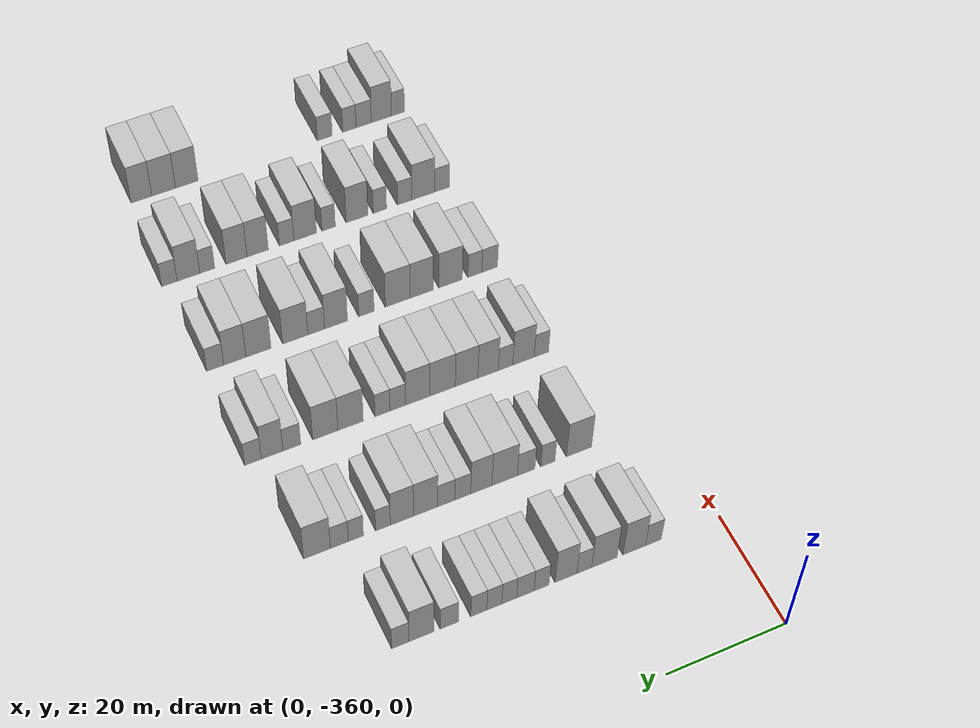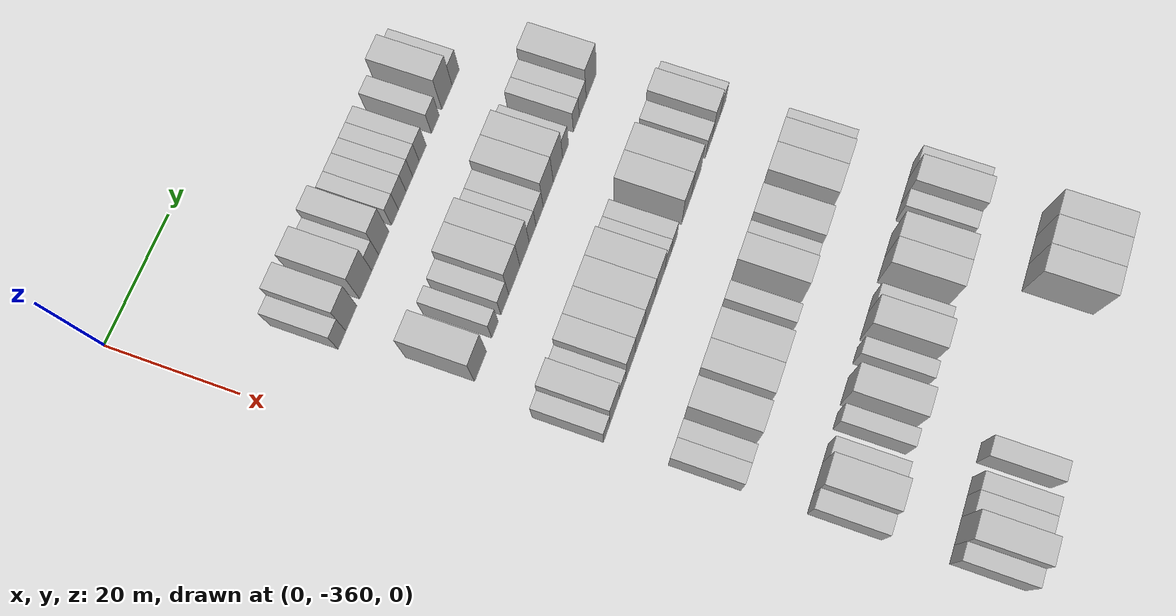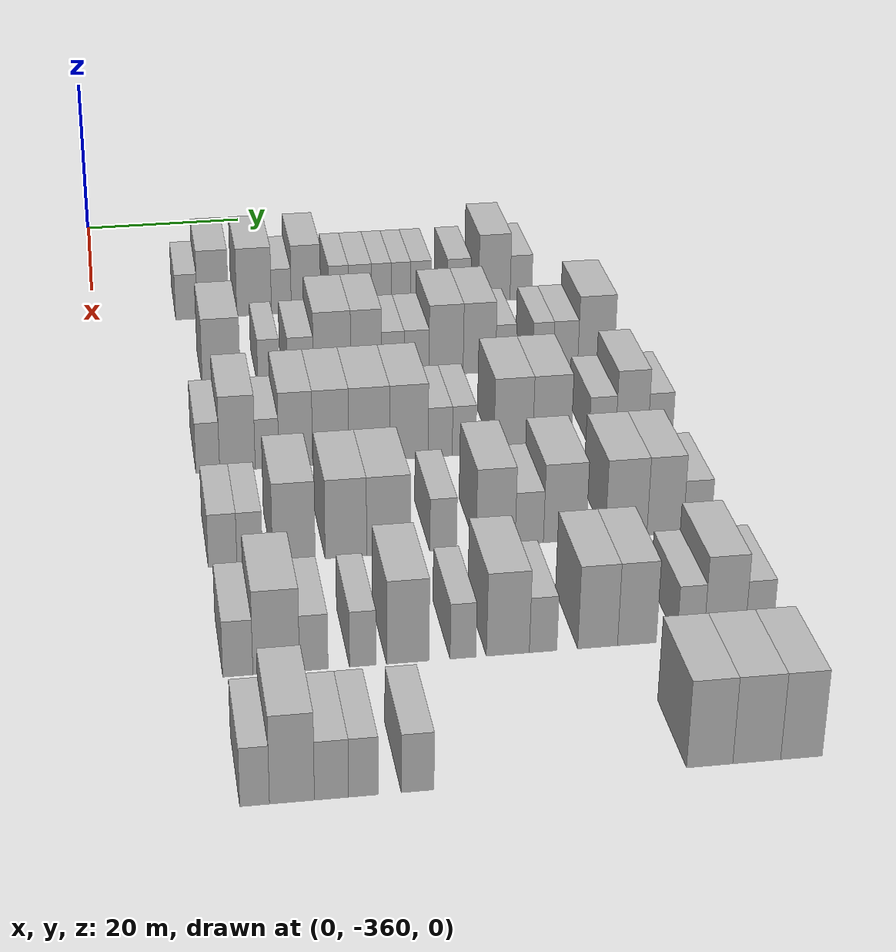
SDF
<sdf version="1.6">
 <world name="default">
  <model name="building_1">
   <static>1</static>
   <pose>25.0000 -348.6639 0 0.000000 0.000000 0.000000</pose>
   <link name="link">
    <pose>0 0 3.00 0 0 0</pose>
    <collision name="collision"><geometry><box><size>10.0000 2.6721 6.0000</size></box></geometry></collision>
    <visual name="visual">
     <cast_shadows>0</cast_shadows>
     <geometry><box><size>10.0000 2.6721 6.0000</size></box></geometry>
     <material>
      <script>
       <uri>model://HANNAS_wall/materials/scripts</uri>
       <uri>model://HANNAS_wall/materials/textures</uri>
       <name>vrc/HANNAS_wall</name>
      </script>
     </material>
    </visual>
   </link>
  </model>
  <model name="building_2">
   <static>1</static>
   <pose>25.0000 -345.4278 0 0.000000 0.000000 0.000000</pose>
   <link name="link">
    <pose>0 0 4.50 0 0 0</pose>
    <collision name="collision"><geometry><box><size>10.0000 3.8002 9.0000</size></box></geometry></collision>
    <visual name="visual">
     <cast_shadows>0</cast_shadows>
     <geometry><box><size>10.0000 3.8002 9.0000</size></box></geometry>
     <material>
      <script>
       <uri>model://HANNAS_wall/materials/scripts</uri>
       <uri>model://HANNAS_wall/materials/textures</uri>
       <name>vrc/HANNAS_wall</name>
      </script>
     </material>
    </visual>
   </link>
  </model>
  <model name="building_3">
   <static>1</static>
   <pose>25.0000 -340.3919 0 0.000000 0.000000 0.000000</pose>
   <link name="link">
    <pose>0 0 4.50 0 0 0</pose>
    <collision name="collision"><geometry><box><size>10.0000 4.2715 9.0000</size></box></geometry></collision>
    <visual name="visual">
     <cast_shadows>0</cast_shadows>
     <geometry><box><size>10.0000 4.2715 9.0000</size></box></geometry>
     <material>
      <script>
       <uri>model://HANNAS_wall/materials/scripts</uri>
       <uri>model://HANNAS_wall/materials/textures</uri>
       <name>vrc/HANNAS_wall</name>
      </script>
     </material>
    </visual>
   </link>
  </model>
  <model name="building_4">
   <static>1</static>
   <pose>25.0000 -337.0334 0 0.000000 0.000000 0.000000</pose>
   <link name="link">
    <pose>0 0 3.00 0 0 0</pose>
    <collision name="collision"><geometry><box><size>10.0000 2.4455 6.0000</size></box></geometry></collision>
    <visual name="visual">
     <cast_shadows>0</cast_shadows>
     <geometry><box><size>10.0000 2.4455 6.0000</size></box></geometry>
     <material>
      <script>
       <uri>model://HANNAS_wall/materials/scripts</uri>
       <uri>model://HANNAS_wall/materials/textures</uri>
       <name>vrc/HANNAS_wall</name>
      </script>
     </material>
    </visual>
   </link>
  </model>
  <model name="building_5">
   <static>1</static>
   <pose>25.0000 -333.9931 0 0.000000 0.000000 0.000000</pose>
   <link name="link">
    <pose>0 0 4.50 0 0 0</pose>
    <collision name="collision"><geometry><box><size>10.0000 3.6352 9.0000</size></box></geometry></collision>
    <visual name="visual">
     <cast_shadows>0</cast_shadows>
     <geometry><box><size>10.0000 3.6352 9.0000</size></box></geometry>
     <material>
      <script>
       <uri>model://HANNAS_wall/materials/scripts</uri>
       <uri>model://HANNAS_wall/materials/textures</uri>
       <name>vrc/HANNAS_wall</name>
      </script>
     </material>
    </visual>
   </link>
  </model>
  <model name="building_6">
   <static>1</static>
   <pose>25.0000 -329.9448 0 0.000000 0.000000 0.000000</pose>
   <link name="link">
    <pose>0 0 3.00 0 0 0</pose>
    <collision name="collision"><geometry><box><size>10.0000 2.4614 6.0000</size></box></geometry></collision>
    <visual name="visual">
     <cast_shadows>0</cast_shadows>
     <geometry><box><size>10.0000 2.4614 6.0000</size></box></geometry>
     <material>
      <script>
       <uri>model://HANNAS_wall/materials/scripts</uri>
       <uri>model://HANNAS_wall/materials/textures</uri>
       <name>vrc/HANNAS_wall</name>
      </script>
     </material>
    </visual>
   </link>
  </model>
  <model name="building_7">
   <static>1</static>
   <pose>25.0000 -327.2852 0 0.000000 0.000000 0.000000</pose>
   <link name="link">
    <pose>0 0 3.00 0 0 0</pose>
    <collision name="collision"><geometry><box><size>10.0000 2.8578 6.0000</size></box></geometry></collision>
    <visual name="visual">
     <cast_shadows>0</cast_shadows>
     <geometry><box><size>10.0000 2.8578 6.0000</size></box></geometry>
     <material>
      <script>
       <uri>model://HANNAS_wall/materials/scripts</uri>
       <uri>model://HANNAS_wall/materials/textures</uri>
       <name>vrc/HANNAS_wall</name>
      </script>
     </material>
    </visual>
   </link>
  </model>
  <model name="building_8">
   <static>1</static>
   <pose>25.0000 -324.6394 0 0.000000 0.000000 0.000000</pose>
   <link name="link">
    <pose>0 0 3.00 0 0 0</pose>
    <collision name="collision"><geometry><box><size>10.0000 2.4337 6.0000</size></box></geometry></collision>
    <visual name="visual">
     <cast_shadows>0</cast_shadows>
     <geometry><box><size>10.0000 2.4337 6.0000</size></box></geometry>
     <material>
      <script>
       <uri>model://HANNAS_wall/materials/scripts</uri>
       <uri>model://HANNAS_wall/materials/textures</uri>
       <name>vrc/HANNAS_wall</name>
      </script>
     </material>
    </visual>
   </link>
  </model>
  <model name="building_9">
   <static>1</static>
   <pose>25.0000 -322.2049 0 0.000000 0.000000 0.000000</pose>
   <link name="link">
    <pose>0 0 3.00 0 0 0</pose>
    <collision name="collision"><geometry><box><size>10.0000 2.4353 6.0000</size></box></geometry></collision>
    <visual name="visual">
     <cast_shadows>0</cast_shadows>
     <geometry><box><size>10.0000 2.4353 6.0000</size></box></geometry>
     <material>
      <script>
       <uri>model://HANNAS_wall/materials/scripts</uri>
       <uri>model://HANNAS_wall/materials/textures</uri>
       <name>vrc/HANNAS_wall</name>
      </script>
     </material>
    </visual>
   </link>
  </model>
  <model name="building_10">
   <static>1</static>
   <pose>25.0000 -319.6846 0 0.000000 0.000000 0.000000</pose>
   <link name="link">
    <pose>0 0 3.00 0 0 0</pose>
    <collision name="collision"><geometry><box><size>10.0000 2.6054 6.0000</size></box></geometry></collision>
    <visual name="visual">
     <cast_shadows>0</cast_shadows>
     <geometry><box><size>10.0000 2.6054 6.0000</size></box></geometry>
     <material>
      <script>
       <uri>model://HANNAS_wall/materials/scripts</uri>
       <uri>model://HANNAS_wall/materials/textures</uri>
       <name>vrc/HANNAS_wall</name>
      </script>
     </material>
    </visual>
   </link>
  </model>
  <model name="building_11">
   <static>1</static>
   <pose>25.0000 -314.9156 0 0.000000 0.000000 0.000000</pose>
   <link name="link">
    <pose>0 0 3.00 0 0 0</pose>
    <collision name="collision"><geometry><box><size>10.0000 2.9324 6.0000</size></box></geometry></collision>
    <visual name="visual">
     <cast_shadows>0</cast_shadows>
     <geometry><box><size>10.0000 2.9324 6.0000</size></box></geometry>
     <material>
      <script>
       <uri>model://HANNAS_wall/materials/scripts</uri>
       <uri>model://HANNAS_wall/materials/textures</uri>
       <name>vrc/HANNAS_wall</name>
      </script>
     </material>
    </visual>
   </link>
  </model>
  <model name="building_12">
   <static>1</static>
   <pose>25.0000 -310.4565 0 0.000000 0.000000 0.000000</pose>
   <link name="link">
    <pose>0 0 4.50 0 0 0</pose>
    <collision name="collision"><geometry><box><size>10.0000 3.9858 9.0000</size></box></geometry></collision>
    <visual name="visual">
     <cast_shadows>0</cast_shadows>
     <geometry><box><size>10.0000 3.9858 9.0000</size></box></geometry>
     <material>
      <script>
       <uri>model://HANNAS_wall/materials/scripts</uri>
       <uri>model://HANNAS_wall/materials/textures</uri>
       <name>vrc/HANNAS_wall</name>
      </script>
     </material>
    </visual>
   </link>
  </model>
  <model name="building_13">
   <static>1</static>
   <pose>25.0000 -307.0967 0 0.000000 0.000000 0.000000</pose>
   <link name="link">
    <pose>0 0 3.00 0 0 0</pose>
    <collision name="collision"><geometry><box><size>10.0000 2.7338 6.0000</size></box></geometry></collision>
    <visual name="visual">
     <cast_shadows>0</cast_shadows>
     <geometry><box><size>10.0000 2.7338 6.0000</size></box></geometry>
     <material>
      <script>
       <uri>model://HANNAS_wall/materials/scripts</uri>
       <uri>model://HANNAS_wall/materials/textures</uri>
       <name>vrc/HANNAS_wall</name>
      </script>
     </material>
    </visual>
   </link>
  </model>
  <model name="building_158">
   <static>1</static>
   <pose>44.0000 -345.8240 0 0.000000 0.000000 0.000000</pose>
   <link name="link">
    <pose>0 0 4.50 0 0 0</pose>
    <collision name="collision"><geometry><box><size>10.0000 4.3519 9.0000</size></box></geometry></collision>
    <visual name="visual">
     <cast_shadows>0</cast_shadows>
     <geometry><box><size>10.0000 4.3519 9.0000</size></box></geometry>
     <material>
      <script>
       <uri>model://HANNAS_wall/materials/scripts</uri>
       <uri>model://HANNAS_wall/materials/textures</uri>
       <name>vrc/HANNAS_wall</name>
      </script>
     </material>
    </visual>
   </link>
  </model>
  <model name="building_159">
   <static>1</static>
   <pose>44.0000 -340.4267 0 0.000000 0.000000 0.000000</pose>
   <link name="link">
    <pose>0 0 3.00 0 0 0</pose>
    <collision name="collision"><geometry><box><size>10.0000 2.4428 6.0000</size></box></geometry></collision>
    <visual name="visual">
     <cast_shadows>0</cast_shadows>
     <geometry><box><size>10.0000 2.4428 6.0000</size></box></geometry>
     <material>
      <script>
       <uri>model://HANNAS_wall/materials/scripts</uri>
       <uri>model://HANNAS_wall/materials/textures</uri>
       <name>vrc/HANNAS_wall</name>
      </script>
     </material>
    </visual>
   </link>
  </model>
  <model name="building_160">
   <static>1</static>
   <pose>44.0000 -336.7131 0 0.000000 0.000000 0.000000</pose>
   <link name="link">
    <pose>0 0 3.00 0 0 0</pose>
    <collision name="collision"><geometry><box><size>10.0000 2.9842 6.0000</size></box></geometry></collision>
    <visual name="visual">
     <cast_shadows>0</cast_shadows>
     <geometry><box><size>10.0000 2.9842 6.0000</size></box></geometry>
     <material>
      <script>
       <uri>model://HANNAS_wall/materials/scripts</uri>
       <uri>model://HANNAS_wall/materials/textures</uri>
       <name>vrc/HANNAS_wall</name>
      </script>
     </material>
    </visual>
   </link>
  </model>
  <model name="building_161">
   <static>1</static>
   <pose>44.0000 -333.0536 0 0.000000 0.000000 0.000000</pose>
   <link name="link">
    <pose>0 0 4.50 0 0 0</pose>
    <collision name="collision"><geometry><box><size>10.0000 4.3349 9.0000</size></box></geometry></collision>
    <visual name="visual">
     <cast_shadows>0</cast_shadows>
     <geometry><box><size>10.0000 4.3349 9.0000</size></box></geometry>
     <material>
      <script>
       <uri>model://HANNAS_wall/materials/scripts</uri>
       <uri>model://HANNAS_wall/materials/textures</uri>
       <name>vrc/HANNAS_wall</name>
      </script>
     </material>
    </visual>
   </link>
  </model>
  <model name="building_162">
   <static>1</static>
   <pose>44.0000 -329.0854 0 0.000000 0.000000 0.000000</pose>
   <link name="link">
    <pose>0 0 4.50 0 0 0</pose>
    <collision name="collision"><geometry><box><size>10.0000 3.6013 9.0000</size></box></geometry></collision>
    <visual name="visual">
     <cast_shadows>0</cast_shadows>
     <geometry><box><size>10.0000 3.6013 9.0000</size></box></geometry>
     <material>
      <script>
       <uri>model://HANNAS_wall/materials/scripts</uri>
       <uri>model://HANNAS_wall/materials/textures</uri>
       <name>vrc/HANNAS_wall</name>
      </script>
     </material>
    </visual>
   </link>
  </model>
  <model name="building_163">
   <static>1</static>
   <pose>44.0000 -325.9582 0 0.000000 0.000000 0.000000</pose>
   <link name="link">
    <pose>0 0 3.00 0 0 0</pose>
    <collision name="collision"><geometry><box><size>10.0000 2.6532 6.0000</size></box></geometry></collision>
    <visual name="visual">
     <cast_shadows>0</cast_shadows>
     <geometry><box><size>10.0000 2.6532 6.0000</size></box></geometry>
     <material>
      <script>
       <uri>model://HANNAS_wall/materials/scripts</uri>
       <uri>model://HANNAS_wall/materials/textures</uri>
       <name>vrc/HANNAS_wall</name>
      </script>
     </material>
    </visual>
   </link>
  </model>
  <model name="building_164">
   <static>1</static>
   <pose>44.0000 -323.1778 0 0.000000 0.000000 0.000000</pose>
   <link name="link">
    <pose>0 0 3.00 0 0 0</pose>
    <collision name="collision"><geometry><box><size>10.0000 2.9076 6.0000</size></box></geometry></collision>
    <visual name="visual">
     <cast_shadows>0</cast_shadows>
     <geometry><box><size>10.0000 2.9076 6.0000</size></box></geometry>
     <material>
      <script>
       <uri>model://HANNAS_wall/materials/scripts</uri>
       <uri>model://HANNAS_wall/materials/textures</uri>
       <name>vrc/HANNAS_wall</name>
      </script>
     </material>
    </visual>
   </link>
  </model>
  <model name="building_165">
   <static>1</static>
   <pose>44.0000 -319.7110 0 0.000000 0.000000 0.000000</pose>
   <link name="link">
    <pose>0 0 4.50 0 0 0</pose>
    <collision name="collision"><geometry><box><size>10.0000 4.0260 9.0000</size></box></geometry></collision>
    <visual name="visual">
     <cast_shadows>0</cast_shadows>
     <geometry><box><size>10.0000 4.0260 9.0000</size></box></geometry>
     <material>
      <script>
       <uri>model://HANNAS_wall/materials/scripts</uri>
       <uri>model://HANNAS_wall/materials/textures</uri>
       <name>vrc/HANNAS_wall</name>
      </script>
     </material>
    </visual>
   </link>
  </model>
  <model name="building_166">
   <static>1</static>
   <pose>44.0000 -315.7798 0 0.000000 0.000000 0.000000</pose>
   <link name="link">
    <pose>0 0 4.50 0 0 0</pose>
    <collision name="collision"><geometry><box><size>10.0000 3.8365 9.0000</size></box></geometry></collision>
    <visual name="visual">
     <cast_shadows>0</cast_shadows>
     <geometry><box><size>10.0000 3.8365 9.0000</size></box></geometry>
     <material>
      <script>
       <uri>model://HANNAS_wall/materials/scripts</uri>
       <uri>model://HANNAS_wall/materials/textures</uri>
       <name>vrc/HANNAS_wall</name>
      </script>
     </material>
    </visual>
   </link>
  </model>
  <model name="building_167">
   <static>1</static>
   <pose>44.0000 -312.6596 0 0.000000 0.000000 0.000000</pose>
   <link name="link">
    <pose>0 0 3.00 0 0 0</pose>
    <collision name="collision"><geometry><box><size>10.0000 2.4039 6.0000</size></box></geometry></collision>
    <visual name="visual">
     <cast_shadows>0</cast_shadows>
     <geometry><box><size>10.0000 2.4039 6.0000</size></box></geometry>
     <material>
      <script>
       <uri>model://HANNAS_wall/materials/scripts</uri>
       <uri>model://HANNAS_wall/materials/textures</uri>
       <name>vrc/HANNAS_wall</name>
      </script>
     </material>
    </visual>
   </link>
  </model>
  <model name="building_168">
   <static>1</static>
   <pose>44.0000 -308.2283 0 0.000000 0.000000 0.000000</pose>
   <link name="link">
    <pose>0 0 3.00 0 0 0</pose>
    <collision name="collision"><geometry><box><size>10.0000 2.4586 6.0000</size></box></geometry></collision>
    <visual name="visual">
     <cast_shadows>0</cast_shadows>
     <geometry><box><size>10.0000 2.4586 6.0000</size></box></geometry>
     <material>
      <script>
       <uri>model://HANNAS_wall/materials/scripts</uri>
       <uri>model://HANNAS_wall/materials/textures</uri>
       <name>vrc/HANNAS_wall</name>
      </script>
     </material>
    </visual>
   </link>
  </model>
  <model name="building_169">
   <static>1</static>
   <pose>44.0000 -305.5375 0 0.000000 0.000000 0.000000</pose>
   <link name="link">
    <pose>0 0 3.00 0 0 0</pose>
    <collision name="collision"><geometry><box><size>10.0000 2.9231 6.0000</size></box></geometry></collision>
    <visual name="visual">
     <cast_shadows>0</cast_shadows>
     <geometry><box><size>10.0000 2.9231 6.0000</size></box></geometry>
     <material>
      <script>
       <uri>model://HANNAS_wall/materials/scripts</uri>
       <uri>model://HANNAS_wall/materials/textures</uri>
       <name>vrc/HANNAS_wall</name>
      </script>
     </material>
    </visual>
   </link>
  </model>
  <model name="building_170">
   <static>1</static>
   <pose>44.0000 -301.8977 0 0.000000 0.000000 0.000000</pose>
   <link name="link">
    <pose>0 0 4.50 0 0 0</pose>
    <collision name="collision"><geometry><box><size>10.0000 4.3564 9.0000</size></box></geometry></collision>
    <visual name="visual">
     <cast_shadows>0</cast_shadows>
     <geometry><box><size>10.0000 4.3564 9.0000</size></box></geometry>
     <material>
      <script>
       <uri>model://HANNAS_wall/materials/scripts</uri>
       <uri>model://HANNAS_wall/materials/textures</uri>
       <name>vrc/HANNAS_wall</name>
      </script>
     </material>
    </visual>
   </link>
  </model>
  <model name="building_324">
   <static>1</static>
   <pose>63.0000 -348.7262 0 0.000000 0.000000 0.000000</pose>
   <link name="link">
    <pose>0 0 3.00 0 0 0</pose>
    <collision name="collision"><geometry><box><size>10.0000 2.5476 6.0000</size></box></geometry></collision>
    <visual name="visual">
     <cast_shadows>0</cast_shadows>
     <geometry><box><size>10.0000 2.5476 6.0000</size></box></geometry>
     <material>
      <script>
       <uri>model://HANNAS_wall/materials/scripts</uri>
       <uri>model://HANNAS_wall/materials/textures</uri>
       <name>vrc/HANNAS_wall</name>
      </script>
     </material>
    </visual>
   </link>
  </model>
  <model name="building_325">
   <static>1</static>
   <pose>63.0000 -345.5427 0 0.000000 0.000000 0.000000</pose>
   <link name="link">
    <pose>0 0 4.50 0 0 0</pose>
    <collision name="collision"><geometry><box><size>10.0000 3.8194 9.0000</size></box></geometry></collision>
    <visual name="visual">
     <cast_shadows>0</cast_shadows>
     <geometry><box><size>10.0000 3.8194 9.0000</size></box></geometry>
     <material>
      <script>
       <uri>model://HANNAS_wall/materials/scripts</uri>
       <uri>model://HANNAS_wall/materials/textures</uri>
       <name>vrc/HANNAS_wall</name>
      </script>
     </material>
    </visual>
   </link>
  </model>
  <model name="building_326">
   <static>1</static>
   <pose>63.0000 -342.3586 0 0.000000 0.000000 0.000000</pose>
   <link name="link">
    <pose>0 0 3.00 0 0 0</pose>
    <collision name="collision"><geometry><box><size>10.0000 2.5489 6.0000</size></box></geometry></collision>
    <visual name="visual">
     <cast_shadows>0</cast_shadows>
     <geometry><box><size>10.0000 2.5489 6.0000</size></box></geometry>
     <material>
      <script>
       <uri>model://HANNAS_wall/materials/scripts</uri>
       <uri>model://HANNAS_wall/materials/textures</uri>
       <name>vrc/HANNAS_wall</name>
      </script>
     </material>
    </visual>
   </link>
  </model>
  <model name="building_327">
   <static>1</static>
   <pose>63.0000 -339.2625 0 0.000000 0.000000 0.000000</pose>
   <link name="link">
    <pose>0 0 4.50 0 0 0</pose>
    <collision name="collision"><geometry><box><size>10.0000 3.6432 9.0000</size></box></geometry></collision>
    <visual name="visual">
     <cast_shadows>0</cast_shadows>
     <geometry><box><size>10.0000 3.6432 9.0000</size></box></geometry>
     <material>
      <script>
       <uri>model://HANNAS_wall/materials/scripts</uri>
       <uri>model://HANNAS_wall/materials/textures</uri>
       <name>vrc/HANNAS_wall</name>
      </script>
     </material>
    </visual>
   </link>
  </model>
  <model name="building_328">
   <static>1</static>
   <pose>63.0000 -335.4761 0 0.000000 0.000000 0.000000</pose>
   <link name="link">
    <pose>0 0 4.50 0 0 0</pose>
    <collision name="collision"><geometry><box><size>10.0000 3.9296 9.0000</size></box></geometry></collision>
    <visual name="visual">
     <cast_shadows>0</cast_shadows>
     <geometry><box><size>10.0000 3.9296 9.0000</size></box></geometry>
     <material>
      <script>
       <uri>model://HANNAS_wall/materials/scripts</uri>
       <uri>model://HANNAS_wall/materials/textures</uri>
       <name>vrc/HANNAS_wall</name>
      </script>
     </material>
    </visual>
   </link>
  </model>
  <model name="building_329">
   <static>1</static>
   <pose>63.0000 -331.2835 0 0.000000 0.000000 0.000000</pose>
   <link name="link">
    <pose>0 0 4.50 0 0 0</pose>
    <collision name="collision"><geometry><box><size>10.0000 4.4557 9.0000</size></box></geometry></collision>
    <visual name="visual">
     <cast_shadows>0</cast_shadows>
     <geometry><box><size>10.0000 4.4557 9.0000</size></box></geometry>
     <material>
      <script>
       <uri>model://HANNAS_wall/materials/scripts</uri>
       <uri>model://HANNAS_wall/materials/textures</uri>
       <name>vrc/HANNAS_wall</name>
      </script>
     </material>
    </visual>
   </link>
  </model>
  <model name="building_330">
   <static>1</static>
   <pose>63.0000 -326.9559 0 0.000000 0.000000 0.000000</pose>
   <link name="link">
    <pose>0 0 4.50 0 0 0</pose>
    <collision name="collision"><geometry><box><size>10.0000 4.1994 9.0000</size></box></geometry></collision>
    <visual name="visual">
     <cast_shadows>0</cast_shadows>
     <geometry><box><size>10.0000 4.1994 9.0000</size></box></geometry>
     <material>
      <script>
       <uri>model://HANNAS_wall/materials/scripts</uri>
       <uri>model://HANNAS_wall/materials/textures</uri>
       <name>vrc/HANNAS_wall</name>
      </script>
     </material>
    </visual>
   </link>
  </model>
  <model name="building_331">
   <static>1</static>
   <pose>63.0000 -323.5265 0 0.000000 0.000000 0.000000</pose>
   <link name="link">
    <pose>0 0 3.00 0 0 0</pose>
    <collision name="collision"><geometry><box><size>10.0000 2.6593 6.0000</size></box></geometry></collision>
    <visual name="visual">
     <cast_shadows>0</cast_shadows>
     <geometry><box><size>10.0000 2.6593 6.0000</size></box></geometry>
     <material>
      <script>
       <uri>model://HANNAS_wall/materials/scripts</uri>
       <uri>model://HANNAS_wall/materials/textures</uri>
       <name>vrc/HANNAS_wall</name>
      </script>
     </material>
    </visual>
   </link>
  </model>
  <model name="building_332">
   <static>1</static>
   <pose>63.0000 -320.9035 0 0.000000 0.000000 0.000000</pose>
   <link name="link">
    <pose>0 0 3.00 0 0 0</pose>
    <collision name="collision"><geometry><box><size>10.0000 2.5867 6.0000</size></box></geometry></collision>
    <visual name="visual">
     <cast_shadows>0</cast_shadows>
     <geometry><box><size>10.0000 2.5867 6.0000</size></box></geometry>
     <material>
      <script>
       <uri>model://HANNAS_wall/materials/scripts</uri>
       <uri>model://HANNAS_wall/materials/textures</uri>
       <name>vrc/HANNAS_wall</name>
      </script>
     </material>
    </visual>
   </link>
  </model>
  <model name="building_333">
   <static>1</static>
   <pose>63.0000 -315.4601 0 0.000000 0.000000 0.000000</pose>
   <link name="link">
    <pose>0 0 4.50 0 0 0</pose>
    <collision name="collision"><geometry><box><size>10.0000 4.3001 9.0000</size></box></geometry></collision>
    <visual name="visual">
     <cast_shadows>0</cast_shadows>
     <geometry><box><size>10.0000 4.3001 9.0000</size></box></geometry>
     <material>
      <script>
       <uri>model://HANNAS_wall/materials/scripts</uri>
       <uri>model://HANNAS_wall/materials/textures</uri>
       <name>vrc/HANNAS_wall</name>
      </script>
     </material>
    </visual>
   </link>
  </model>
  <model name="building_334">
   <static>1</static>
   <pose>63.0000 -311.1756 0 0.000000 0.000000 0.000000</pose>
   <link name="link">
    <pose>0 0 4.50 0 0 0</pose>
    <collision name="collision"><geometry><box><size>10.0000 4.2690 9.0000</size></box></geometry></collision>
    <visual name="visual">
     <cast_shadows>0</cast_shadows>
     <geometry><box><size>10.0000 4.2690 9.0000</size></box></geometry>
     <material>
      <script>
       <uri>model://HANNAS_wall/materials/scripts</uri>
       <uri>model://HANNAS_wall/materials/textures</uri>
       <name>vrc/HANNAS_wall</name>
      </script>
     </material>
    </visual>
   </link>
  </model>
  <model name="building_335">
   <static>1</static>
   <pose>63.0000 -305.5536 0 0.000000 0.000000 0.000000</pose>
   <link name="link">
    <pose>0 0 3.00 0 0 0</pose>
    <collision name="collision"><geometry><box><size>10.0000 2.9750 6.0000</size></box></geometry></collision>
    <visual name="visual">
     <cast_shadows>0</cast_shadows>
     <geometry><box><size>10.0000 2.9750 6.0000</size></box></geometry>
     <material>
      <script>
       <uri>model://HANNAS_wall/materials/scripts</uri>
       <uri>model://HANNAS_wall/materials/textures</uri>
       <name>vrc/HANNAS_wall</name>
      </script>
     </material>
    </visual>
   </link>
  </model>
  <model name="building_336">
   <static>1</static>
   <pose>63.0000 -302.2595 0 0.000000 0.000000 0.000000</pose>
   <link name="link">
    <pose>0 0 4.50 0 0 0</pose>
    <collision name="collision"><geometry><box><size>10.0000 3.6131 9.0000</size></box></geometry></collision>
    <visual name="visual">
     <cast_shadows>0</cast_shadows>
     <geometry><box><size>10.0000 3.6131 9.0000</size></box></geometry>
     <material>
      <script>
       <uri>model://HANNAS_wall/materials/scripts</uri>
       <uri>model://HANNAS_wall/materials/textures</uri>
       <name>vrc/HANNAS_wall</name>
      </script>
     </material>
    </visual>
   </link>
  </model>
  <model name="building_337">
   <static>1</static>
   <pose>63.0000 -299.0658 0 0.000000 0.000000 0.000000</pose>
   <link name="link">
    <pose>0 0 3.00 0 0 0</pose>
    <collision name="collision"><geometry><box><size>10.0000 2.7743 6.0000</size></box></geometry></collision>
    <visual name="visual">
     <cast_shadows>0</cast_shadows>
     <geometry><box><size>10.0000 2.7743 6.0000</size></box></geometry>
     <material>
      <script>
       <uri>model://HANNAS_wall/materials/scripts</uri>
       <uri>model://HANNAS_wall/materials/textures</uri>
       <name>vrc/HANNAS_wall</name>
      </script>
     </material>
    </visual>
   </link>
  </model>
  <model name="building_497">
   <static>1</static>
   <pose>82.0000 -348.5699 0 0.000000 0.000000 0.000000</pose>
   <link name="link">
    <pose>0 0 3.00 0 0 0</pose>
    <collision name="collision"><geometry><box><size>10.0000 2.8602 6.0000</size></box></geometry></collision>
    <visual name="visual">
     <cast_shadows>0</cast_shadows>
     <geometry><box><size>10.0000 2.8602 6.0000</size></box></geometry>
     <material>
      <script>
       <uri>model://HANNAS_wall/materials/scripts</uri>
       <uri>model://HANNAS_wall/materials/textures</uri>
       <name>vrc/HANNAS_wall</name>
      </script>
     </material>
    </visual>
   </link>
  </model>
  <model name="building_498">
   <static>1</static>
   <pose>82.0000 -345.8644 0 0.000000 0.000000 0.000000</pose>
   <link name="link">
    <pose>0 0 3.00 0 0 0</pose>
    <collision name="collision"><geometry><box><size>10.0000 2.5508 6.0000</size></box></geometry></collision>
    <visual name="visual">
     <cast_shadows>0</cast_shadows>
     <geometry><box><size>10.0000 2.5508 6.0000</size></box></geometry>
     <material>
      <script>
       <uri>model://HANNAS_wall/materials/scripts</uri>
       <uri>model://HANNAS_wall/materials/textures</uri>
       <name>vrc/HANNAS_wall</name>
      </script>
     </material>
    </visual>
   </link>
  </model>
  <model name="building_499">
   <static>1</static>
   <pose>82.0000 -341.4486 0 0.000000 0.000000 0.000000</pose>
   <link name="link">
    <pose>0 0 4.50 0 0 0</pose>
    <collision name="collision"><geometry><box><size>10.0000 4.2808 9.0000</size></box></geometry></collision>
    <visual name="visual">
     <cast_shadows>0</cast_shadows>
     <geometry><box><size>10.0000 4.2808 9.0000</size></box></geometry>
     <material>
      <script>
       <uri>model://HANNAS_wall/materials/scripts</uri>
       <uri>model://HANNAS_wall/materials/textures</uri>
       <name>vrc/HANNAS_wall</name>
      </script>
     </material>
    </visual>
   </link>
  </model>
  <model name="building_500">
   <static>1</static>
   <pose>82.0000 -336.2172 0 0.000000 0.000000 0.000000</pose>
   <link name="link">
    <pose>0 0 4.50 0 0 0</pose>
    <collision name="collision"><geometry><box><size>10.0000 4.1819 9.0000</size></box></geometry></collision>
    <visual name="visual">
     <cast_shadows>0</cast_shadows>
     <geometry><box><size>10.0000 4.1819 9.0000</size></box></geometry>
     <material>
      <script>
       <uri>model://HANNAS_wall/materials/scripts</uri>
       <uri>model://HANNAS_wall/materials/textures</uri>
       <name>vrc/HANNAS_wall</name>
      </script>
     </material>
    </visual>
   </link>
  </model>
  <model name="building_501">
   <static>1</static>
   <pose>82.0000 -331.9127 0 0.000000 0.000000 0.000000</pose>
   <link name="link">
    <pose>0 0 4.50 0 0 0</pose>
    <collision name="collision"><geometry><box><size>10.0000 4.4272 9.0000</size></box></geometry></collision>
    <visual name="visual">
     <cast_shadows>0</cast_shadows>
     <geometry><box><size>10.0000 4.4272 9.0000</size></box></geometry>
     <material>
      <script>
       <uri>model://HANNAS_wall/materials/scripts</uri>
       <uri>model://HANNAS_wall/materials/textures</uri>
       <name>vrc/HANNAS_wall</name>
      </script>
     </material>
    </visual>
   </link>
  </model>
  <model name="building_502">
   <static>1</static>
   <pose>82.0000 -326.3410 0 0.000000 0.000000 0.000000</pose>
   <link name="link">
    <pose>0 0 3.00 0 0 0</pose>
    <collision name="collision"><geometry><box><size>10.0000 2.7163 6.0000</size></box></geometry></collision>
    <visual name="visual">
     <cast_shadows>0</cast_shadows>
     <geometry><box><size>10.0000 2.7163 6.0000</size></box></geometry>
     <material>
      <script>
       <uri>model://HANNAS_wall/materials/scripts</uri>
       <uri>model://HANNAS_wall/materials/textures</uri>
       <name>vrc/HANNAS_wall</name>
      </script>
     </material>
    </visual>
   </link>
  </model>
  <model name="building_503">
   <static>1</static>
   <pose>82.0000 -320.9745 0 0.000000 0.000000 0.000000</pose>
   <link name="link">
    <pose>0 0 4.50 0 0 0</pose>
    <collision name="collision"><geometry><box><size>10.0000 4.0167 9.0000</size></box></geometry></collision>
    <visual name="visual">
     <cast_shadows>0</cast_shadows>
     <geometry><box><size>10.0000 4.0167 9.0000</size></box></geometry>
     <material>
      <script>
       <uri>model://HANNAS_wall/materials/scripts</uri>
       <uri>model://HANNAS_wall/materials/textures</uri>
       <name>vrc/HANNAS_wall</name>
      </script>
     </material>
    </visual>
   </link>
  </model>
  <model name="building_504">
   <static>1</static>
   <pose>82.0000 -317.5060 0 0.000000 0.000000 0.000000</pose>
   <link name="link">
    <pose>0 0 3.00 0 0 0</pose>
    <collision name="collision"><geometry><box><size>10.0000 2.9203 6.0000</size></box></geometry></collision>
    <visual name="visual">
     <cast_shadows>0</cast_shadows>
     <geometry><box><size>10.0000 2.9203 6.0000</size></box></geometry>
     <material>
      <script>
       <uri>model://HANNAS_wall/materials/scripts</uri>
       <uri>model://HANNAS_wall/materials/textures</uri>
       <name>vrc/HANNAS_wall</name>
      </script>
     </material>
    </visual>
   </link>
  </model>
  <model name="building_505">
   <static>1</static>
   <pose>82.0000 -313.8423 0 0.000000 0.000000 0.000000</pose>
   <link name="link">
    <pose>0 0 4.50 0 0 0</pose>
    <collision name="collision"><geometry><box><size>10.0000 4.4072 9.0000</size></box></geometry></collision>
    <visual name="visual">
     <cast_shadows>0</cast_shadows>
     <geometry><box><size>10.0000 4.4072 9.0000</size></box></geometry>
     <material>
      <script>
       <uri>model://HANNAS_wall/materials/scripts</uri>
       <uri>model://HANNAS_wall/materials/textures</uri>
       <name>vrc/HANNAS_wall</name>
      </script>
     </material>
    </visual>
   </link>
  </model>
  <model name="building_506">
   <static>1</static>
   <pose>82.0000 -307.4682 0 0.000000 0.000000 0.000000</pose>
   <link name="link">
    <pose>0 0 4.50 0 0 0</pose>
    <collision name="collision"><geometry><box><size>10.0000 4.3409 9.0000</size></box></geometry></collision>
    <visual name="visual">
     <cast_shadows>0</cast_shadows>
     <geometry><box><size>10.0000 4.3409 9.0000</size></box></geometry>
     <material>
      <script>
       <uri>model://HANNAS_wall/materials/scripts</uri>
       <uri>model://HANNAS_wall/materials/textures</uri>
       <name>vrc/HANNAS_wall</name>
      </script>
     </material>
    </visual>
   </link>
  </model>
  <model name="building_507">
   <static>1</static>
   <pose>82.0000 -303.4007 0 0.000000 0.000000 0.000000</pose>
   <link name="link">
    <pose>0 0 4.50 0 0 0</pose>
    <collision name="collision"><geometry><box><size>10.0000 3.7942 9.0000</size></box></geometry></collision>
    <visual name="visual">
     <cast_shadows>0</cast_shadows>
     <geometry><box><size>10.0000 3.7942 9.0000</size></box></geometry>
     <material>
      <script>
       <uri>model://HANNAS_wall/materials/scripts</uri>
       <uri>model://HANNAS_wall/materials/textures</uri>
       <name>vrc/HANNAS_wall</name>
      </script>
     </material>
    </visual>
   </link>
  </model>
  <model name="building_508">
   <static>1</static>
   <pose>82.0000 -300.0434 0 0.000000 0.000000 0.000000</pose>
   <link name="link">
    <pose>0 0 3.00 0 0 0</pose>
    <collision name="collision"><geometry><box><size>10.0000 2.9204 6.0000</size></box></geometry></collision>
    <visual name="visual">
     <cast_shadows>0</cast_shadows>
     <geometry><box><size>10.0000 2.9204 6.0000</size></box></geometry>
     <material>
      <script>
       <uri>model://HANNAS_wall/materials/scripts</uri>
       <uri>model://HANNAS_wall/materials/textures</uri>
       <name>vrc/HANNAS_wall</name>
      </script>
     </material>
    </visual>
   </link>
  </model>
  <model name="building_678">
   <static>1</static>
   <pose>101.0000 -348.6088 0 0.000000 0.000000 0.000000</pose>
   <link name="link">
    <pose>0 0 3.00 0 0 0</pose>
    <collision name="collision"><geometry><box><size>10.0000 2.7825 6.0000</size></box></geometry></collision>
    <visual name="visual">
     <cast_shadows>0</cast_shadows>
     <geometry><box><size>10.0000 2.7825 6.0000</size></box></geometry>
     <material>
      <script>
       <uri>model://HANNAS_wall/materials/scripts</uri>
       <uri>model://HANNAS_wall/materials/textures</uri>
       <name>vrc/HANNAS_wall</name>
      </script>
     </material>
    </visual>
   </link>
  </model>
  <model name="building_679">
   <static>1</static>
   <pose>101.0000 -345.0667 0 0.000000 0.000000 0.000000</pose>
   <link name="link">
    <pose>0 0 4.50 0 0 0</pose>
    <collision name="collision"><geometry><box><size>10.0000 4.3016 9.0000</size></box></geometry></collision>
    <visual name="visual">
     <cast_shadows>0</cast_shadows>
     <geometry><box><size>10.0000 4.3016 9.0000</size></box></geometry>
     <material>
      <script>
       <uri>model://HANNAS_wall/materials/scripts</uri>
       <uri>model://HANNAS_wall/materials/textures</uri>
       <name>vrc/HANNAS_wall</name>
      </script>
     </material>
    </visual>
   </link>
  </model>
  <model name="building_680">
   <static>1</static>
   <pose>101.0000 -341.5876 0 0.000000 0.000000 0.000000</pose>
   <link name="link">
    <pose>0 0 3.00 0 0 0</pose>
    <collision name="collision"><geometry><box><size>10.0000 2.6565 6.0000</size></box></geometry></collision>
    <visual name="visual">
     <cast_shadows>0</cast_shadows>
     <geometry><box><size>10.0000 2.6565 6.0000</size></box></geometry>
     <material>
      <script>
       <uri>model://HANNAS_wall/materials/scripts</uri>
       <uri>model://HANNAS_wall/materials/textures</uri>
       <name>vrc/HANNAS_wall</name>
      </script>
     </material>
    </visual>
   </link>
  </model>
  <model name="building_681">
   <static>1</static>
   <pose>101.0000 -337.0286 0 0.000000 0.000000 0.000000</pose>
   <link name="link">
    <pose>0 0 3.00 0 0 0</pose>
    <collision name="collision"><geometry><box><size>10.0000 2.4616 6.0000</size></box></geometry></collision>
    <visual name="visual">
     <cast_shadows>0</cast_shadows>
     <geometry><box><size>10.0000 2.4616 6.0000</size></box></geometry>
     <material>
      <script>
       <uri>model://HANNAS_wall/materials/scripts</uri>
       <uri>model://HANNAS_wall/materials/textures</uri>
       <name>vrc/HANNAS_wall</name>
      </script>
     </material>
    </visual>
   </link>
  </model>
  <model name="building_682">
   <static>1</static>
   <pose>101.0000 -332.8149 0 0.000000 0.000000 0.000000</pose>
   <link name="link">
    <pose>0 0 4.50 0 0 0</pose>
    <collision name="collision"><geometry><box><size>10.0000 3.9659 9.0000</size></box></geometry></collision>
    <visual name="visual">
     <cast_shadows>0</cast_shadows>
     <geometry><box><size>10.0000 3.9659 9.0000</size></box></geometry>
     <material>
      <script>
       <uri>model://HANNAS_wall/materials/scripts</uri>
       <uri>model://HANNAS_wall/materials/textures</uri>
       <name>vrc/HANNAS_wall</name>
      </script>
     </material>
    </visual>
   </link>
  </model>
  <model name="building_683">
   <static>1</static>
   <pose>101.0000 -327.6180 0 0.000000 0.000000 0.000000</pose>
   <link name="link">
    <pose>0 0 3.00 0 0 0</pose>
    <collision name="collision"><geometry><box><size>10.0000 2.4278 6.0000</size></box></geometry></collision>
    <visual name="visual">
     <cast_shadows>0</cast_shadows>
     <geometry><box><size>10.0000 2.4278 6.0000</size></box></geometry>
     <material>
      <script>
       <uri>model://HANNAS_wall/materials/scripts</uri>
       <uri>model://HANNAS_wall/materials/textures</uri>
       <name>vrc/HANNAS_wall</name>
      </script>
     </material>
    </visual>
   </link>
  </model>
  <model name="building_684">
   <static>1</static>
   <pose>101.0000 -323.3628 0 0.000000 0.000000 0.000000</pose>
   <link name="link">
    <pose>0 0 4.50 0 0 0</pose>
    <collision name="collision"><geometry><box><size>10.0000 4.0826 9.0000</size></box></geometry></collision>
    <visual name="visual">
     <cast_shadows>0</cast_shadows>
     <geometry><box><size>10.0000 4.0826 9.0000</size></box></geometry>
     <material>
      <script>
       <uri>model://HANNAS_wall/materials/scripts</uri>
       <uri>model://HANNAS_wall/materials/textures</uri>
       <name>vrc/HANNAS_wall</name>
      </script>
     </material>
    </visual>
   </link>
  </model>
  <model name="building_685">
   <static>1</static>
   <pose>101.0000 -320.0128 0 0.000000 0.000000 0.000000</pose>
   <link name="link">
    <pose>0 0 3.00 0 0 0</pose>
    <collision name="collision"><geometry><box><size>10.0000 2.6175 6.0000</size></box></geometry></collision>
    <visual name="visual">
     <cast_shadows>0</cast_shadows>
     <geometry><box><size>10.0000 2.6175 6.0000</size></box></geometry>
     <material>
      <script>
       <uri>model://HANNAS_wall/materials/scripts</uri>
       <uri>model://HANNAS_wall/materials/textures</uri>
       <name>vrc/HANNAS_wall</name>
      </script>
     </material>
    </visual>
   </link>
  </model>
  <model name="building_686">
   <static>1</static>
   <pose>101.0000 -314.7950 0 0.000000 0.000000 0.000000</pose>
   <link name="link">
    <pose>0 0 4.50 0 0 0</pose>
    <collision name="collision"><geometry><box><size>10.0000 3.8181 9.0000</size></box></geometry></collision>
    <visual name="visual">
     <cast_shadows>0</cast_shadows>
     <geometry><box><size>10.0000 3.8181 9.0000</size></box></geometry>
     <material>
      <script>
       <uri>model://HANNAS_wall/materials/scripts</uri>
       <uri>model://HANNAS_wall/materials/textures</uri>
       <name>vrc/HANNAS_wall</name>
      </script>
     </material>
    </visual>
   </link>
  </model>
  <model name="building_687">
   <static>1</static>
   <pose>101.0000 -311.0260 0 0.000000 0.000000 0.000000</pose>
   <link name="link">
    <pose>0 0 4.50 0 0 0</pose>
    <collision name="collision"><geometry><box><size>10.0000 3.7199 9.0000</size></box></geometry></collision>
    <visual name="visual">
     <cast_shadows>0</cast_shadows>
     <geometry><box><size>10.0000 3.7199 9.0000</size></box></geometry>
     <material>
      <script>
       <uri>model://HANNAS_wall/materials/scripts</uri>
       <uri>model://HANNAS_wall/materials/textures</uri>
       <name>vrc/HANNAS_wall</name>
      </script>
     </material>
    </visual>
   </link>
  </model>
  <model name="building_688">
   <static>1</static>
   <pose>101.0000 -305.8587 0 0.000000 0.000000 0.000000</pose>
   <link name="link">
    <pose>0 0 3.00 0 0 0</pose>
    <collision name="collision"><geometry><box><size>10.0000 2.6146 6.0000</size></box></geometry></collision>
    <visual name="visual">
     <cast_shadows>0</cast_shadows>
     <geometry><box><size>10.0000 2.6146 6.0000</size></box></geometry>
     <material>
      <script>
       <uri>model://HANNAS_wall/materials/scripts</uri>
       <uri>model://HANNAS_wall/materials/textures</uri>
       <name>vrc/HANNAS_wall</name>
      </script>
     </material>
    </visual>
   </link>
  </model>
  <model name="building_689">
   <static>1</static>
   <pose>101.0000 -302.5515 0 0.000000 0.000000 0.000000</pose>
   <link name="link">
    <pose>0 0 4.50 0 0 0</pose>
    <collision name="collision"><geometry><box><size>10.0000 4.0000 9.0000</size></box></geometry></collision>
    <visual name="visual">
     <cast_shadows>0</cast_shadows>
     <geometry><box><size>10.0000 4.0000 9.0000</size></box></geometry>
     <material>
      <script>
       <uri>model://HANNAS_wall/materials/scripts</uri>
       <uri>model://HANNAS_wall/materials/textures</uri>
       <name>vrc/HANNAS_wall</name>
      </script>
     </material>
    </visual>
   </link>
  </model>
  <model name="building_690">
   <static>1</static>
   <pose>101.0000 -299.1913 0 0.000000 0.000000 0.000000</pose>
   <link name="link">
    <pose>0 0 3.00 0 0 0</pose>
    <collision name="collision"><geometry><box><size>10.0000 2.7203 6.0000</size></box></geometry></collision>
    <visual name="visual">
     <cast_shadows>0</cast_shadows>
     <geometry><box><size>10.0000 2.7203 6.0000</size></box></geometry>
     <material>
      <script>
       <uri>model://HANNAS_wall/materials/scripts</uri>
       <uri>model://HANNAS_wall/materials/textures</uri>
       <name>vrc/HANNAS_wall</name>
      </script>
     </material>
    </visual>
   </link>
  </model>
  <model name="building_853">
   <static>1</static>
   <pose>120.0000 -348.7435 0 0.000000 0.000000 0.000000</pose>
   <link name="link">
    <pose>0 0 3.00 0 0 0</pose>
    <collision name="collision"><geometry><box><size>10.0000 2.5129 6.0000</size></box></geometry></collision>
    <visual name="visual">
     <cast_shadows>0</cast_shadows>
     <geometry><box><size>10.0000 2.5129 6.0000</size></box></geometry>
     <material>
      <script>
       <uri>model://HANNAS_wall/materials/scripts</uri>
       <uri>model://HANNAS_wall/materials/textures</uri>
       <name>vrc/HANNAS_wall</name>
      </script>
     </material>
    </visual>
   </link>
  </model>
  <model name="building_854">
   <static>1</static>
   <pose>120.0000 -345.5786 0 0.000000 0.000000 0.000000</pose>
   <link name="link">
    <pose>0 0 4.50 0 0 0</pose>
    <collision name="collision"><geometry><box><size>10.0000 3.8170 9.0000</size></box></geometry></collision>
    <visual name="visual">
     <cast_shadows>0</cast_shadows>
     <geometry><box><size>10.0000 3.8170 9.0000</size></box></geometry>
     <material>
      <script>
       <uri>model://HANNAS_wall/materials/scripts</uri>
       <uri>model://HANNAS_wall/materials/textures</uri>
       <name>vrc/HANNAS_wall</name>
      </script>
     </material>
    </visual>
   </link>
  </model>
  <model name="building_855">
   <static>1</static>
   <pose>120.0000 -342.2139 0 0.000000 0.000000 0.000000</pose>
   <link name="link">
    <pose>0 0 3.00 0 0 0</pose>
    <collision name="collision"><geometry><box><size>10.0000 2.9124 6.0000</size></box></geometry></collision>
    <visual name="visual">
     <cast_shadows>0</cast_shadows>
     <geometry><box><size>10.0000 2.9124 6.0000</size></box></geometry>
     <material>
      <script>
       <uri>model://HANNAS_wall/materials/scripts</uri>
       <uri>model://HANNAS_wall/materials/textures</uri>
       <name>vrc/HANNAS_wall</name>
      </script>
     </material>
    </visual>
   </link>
  </model>
  <model name="building_856">
   <static>1</static>
   <pose>120.0000 -339.4976 0 0.000000 0.000000 0.000000</pose>
   <link name="link">
    <pose>0 0 3.00 0 0 0</pose>
    <collision name="collision"><geometry><box><size>10.0000 2.5201 6.0000</size></box></geometry></collision>
    <visual name="visual">
     <cast_shadows>0</cast_shadows>
     <geometry><box><size>10.0000 2.5201 6.0000</size></box></geometry>
     <material>
      <script>
       <uri>model://HANNAS_wall/materials/scripts</uri>
       <uri>model://HANNAS_wall/materials/textures</uri>
       <name>vrc/HANNAS_wall</name>
      </script>
     </material>
    </visual>
   </link>
  </model>
  <model name="building_857">
   <static>1</static>
   <pose>120.0000 -334.8349 0 0.000000 0.000000 0.000000</pose>
   <link name="link">
    <pose>0 0 3.00 0 0 0</pose>
    <collision name="collision"><geometry><box><size>10.0000 2.8054 6.0000</size></box></geometry></collision>
    <visual name="visual">
     <cast_shadows>0</cast_shadows>
     <geometry><box><size>10.0000 2.8054 6.0000</size></box></geometry>
     <material>
      <script>
       <uri>model://HANNAS_wall/materials/scripts</uri>
       <uri>model://HANNAS_wall/materials/textures</uri>
       <name>vrc/HANNAS_wall</name>
      </script>
     </material>
    </visual>
   </link>
  </model>
  <model name="building_858">
   <static>1</static>
   <pose>120.0000 -309.2604 0 0.000000 0.000000 0.000000</pose>
   <link name="link">
    <pose>0 0 4.50 0 0 0</pose>
    <collision name="collision"><geometry><box><size>10.0000 4.1145 9.0000</size></box></geometry></collision>
    <visual name="visual">
     <cast_shadows>0</cast_shadows>
     <geometry><box><size>10.0000 4.1145 9.0000</size></box></geometry>
     <material>
      <script>
       <uri>model://HANNAS_wall/materials/scripts</uri>
       <uri>model://HANNAS_wall/materials/textures</uri>
       <name>vrc/HANNAS_wall</name>
      </script>
     </material>
    </visual>
   </link>
  </model>
  <model name="building_859">
   <static>1</static>
   <pose>120.0000 -305.0626 0 0.000000 0.000000 0.000000</pose>
   <link name="link">
    <pose>0 0 4.50 0 0 0</pose>
    <collision name="collision"><geometry><box><size>10.0000 4.2810 9.0000</size></box></geometry></collision>
    <visual name="visual">
     <cast_shadows>0</cast_shadows>
     <geometry><box><size>10.0000 4.2810 9.0000</size></box></geometry>
     <material>
      <script>
       <uri>model://HANNAS_wall/materials/scripts</uri>
       <uri>model://HANNAS_wall/materials/textures</uri>
       <name>vrc/HANNAS_wall</name>
      </script>
     </material>
    </visual>
   </link>
  </model>
  <model name="building_860">
   <static>1</static>
   <pose>120.0000 -301.0540 0 0.000000 0.000000 0.000000</pose>
   <link name="link">
    <pose>0 0 4.50 0 0 0</pose>
    <collision name="collision"><geometry><box><size>10.0000 3.7364 9.0000</size></box></geometry></collision>
    <visual name="visual">
     <cast_shadows>0</cast_shadows>
     <geometry><box><size>10.0000 3.7364 9.0000</size></box></geometry>
     <material>
      <script>
       <uri>model://HANNAS_wall/materials/scripts</uri>
       <uri>model://HANNAS_wall/materials/textures</uri>
       <name>vrc/HANNAS_wall</name>
      </script>
     </material>
    </visual>
   </link>
  </model>
 </world>
</sdf>
